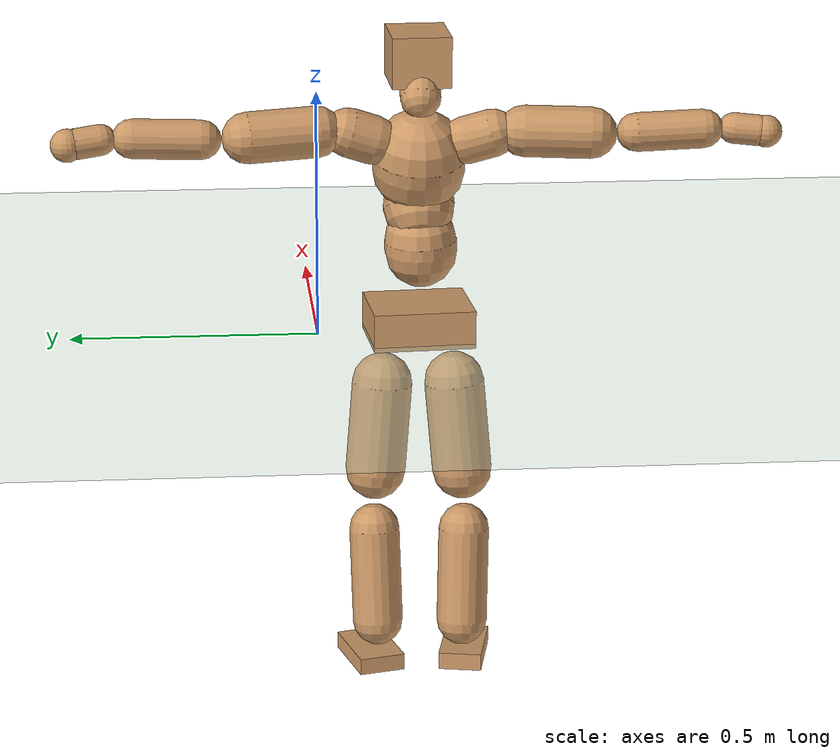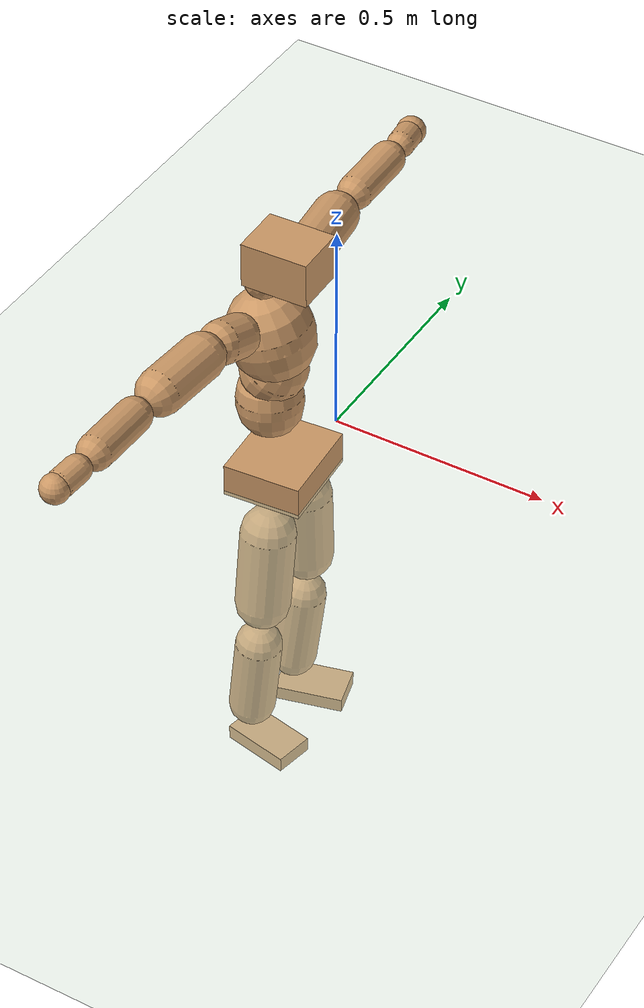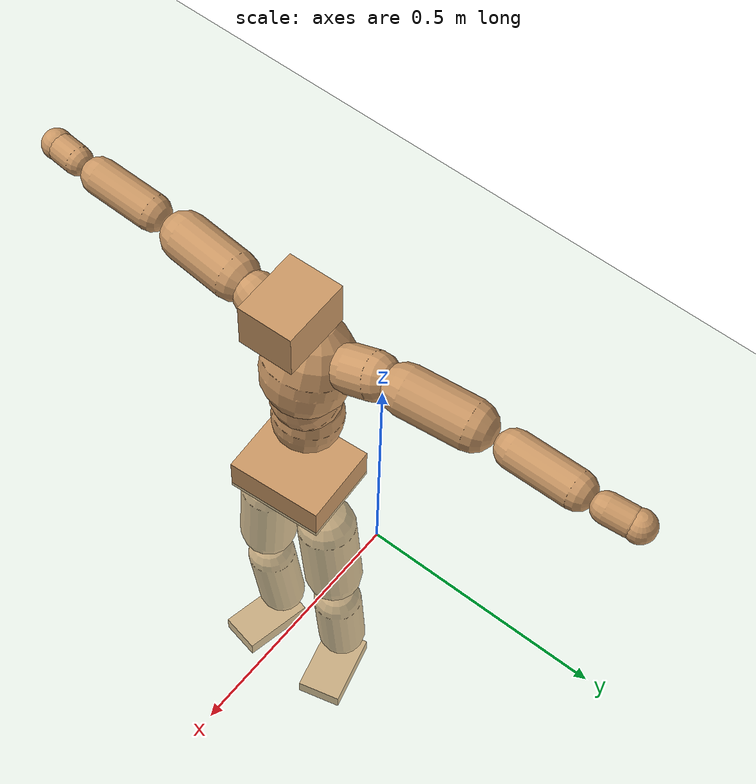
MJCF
<mujoco model="humanoid">
  <compiler coordinate="local" angle="radian"/>
  <default>
    <joint damping="0.0" armature="0.01" stiffness="0.0" limited="true"/>
    <geom conaffinity="1" condim="3" contype="7" margin="0.001" rgba="0.8 0.6 .4 1"/>
  </default>
  <asset>
    <texture type="skybox" builtin="gradient" rgb1=".4 .5 .6" rgb2="0 0 0" width="100" height="100"/>
    <texture builtin="flat" height="1278" mark="cross" markrgb="1 1 1" name="texgeom" random="0.01" rgb1="0.8 0.6 0.4" rgb2="0.8 0.6 0.4" type="cube" width="127"/>
    <texture builtin="checker" height="100" name="texplane" rgb1="0 0 0" rgb2="0.8 0.8 0.8" type="2d" width="100"/>
    <material name="MatPlane" reflectance="0.5" shininess="1" specular="1" texrepeat="60 60" texture="texplane"/>
    <material name="geom" texture="texgeom" texuniform="true"/>
  </asset>
  <worldbody>
    <light cutoff="100" diffuse="1 1 1" dir="-0 0 -1.3" directional="true" exponent="1" pos="0 0 1.3" specular=".1 .1 .1"/>
    <geom conaffinity="1" condim="3" name="floor" pos="0 0 0" rgba="0.8 0.9 0.8 1" size="100 100 .2" type="plane" material="MatPlane"/>
    <body name="Pelvis" pos="-0.0029 -0.2038 0.0381">
      <freejoint name="Pelvis"/>
      <geom type="box" contype="1" conaffinity="1" density="500" pos="-0.0043 -0.0003 -0.0111" size="0.0874 0.1028 0.0384" quat="0.9994 0.0000 0.0000 0.0344" name="Pelvis"/>
      <body name="L_Hip" pos="0.0024 0.0692 -0.0815">
        <joint name="L_Hip_x" type="hinge" pos="0 0 0" axis="1 0 0" stiffness="800" damping="80" armature="0.02" range="-180.0000 180.0000"/>
        <joint name="L_Hip_y" type="hinge" pos="0 0 0" axis="0 1 0" stiffness="800" damping="80" armature="0.02" range="-180.0000 180.0000"/>
        <joint name="L_Hip_z" type="hinge" pos="0 0 0" axis="0 0 1" stiffness="800" damping="80" armature="0.02" range="-180.0000 180.0000"/>
        <geom type="capsule" contype="1" conaffinity="1" density="500" fromto="-0.0015 0.0048 -0.0620 -0.0060 0.0193 -0.2479" size="0.0612" name="L_Hip"/>
        <body name="L_Knee" pos="-0.0076 0.0242 -0.3098">
          <joint name="L_Knee_x" type="hinge" pos="0 0 0" axis="1 0 0" stiffness="800" damping="80" armature="0.02" range="-180.0000 180.0000"/>
          <joint name="L_Knee_y" type="hinge" pos="0 0 0" axis="0 1 0" stiffness="800" damping="80" armature="0.02" range="-180.0000 180.0000"/>
          <joint name="L_Knee_z" type="hinge" pos="0 0 0" axis="0 0 1" stiffness="800" damping="80" armature="0.02" range="-180.0000 180.0000"/>
          <geom type="capsule" contype="1" conaffinity="1" density="500" fromto="-0.0076 -0.0017 -0.0645 -0.0303 -0.0069 -0.2579" size="0.0515" name="L_Knee"/>
          <body name="L_Ankle" pos="-0.0379 -0.0086 -0.3224">
            <joint name="L_Ankle_x" type="hinge" pos="0 0 0" axis="1 0 0" stiffness="800" damping="80" armature="0.02" range="-180.0000 180.0000"/>
            <joint name="L_Ankle_y" type="hinge" pos="0 0 0" axis="0 1 0" stiffness="800" damping="80" armature="0.02" range="-180.0000 180.0000"/>
            <joint name="L_Ankle_z" type="hinge" pos="0 0 0" axis="0 0 1" stiffness="800" damping="80" armature="0.02" range="-180.0000 180.0000"/>
            <geom type="box" contype="1" conaffinity="1" density="500" pos="0.0527 0.0135 -0.0243" size="0.0787 0.0475 0.0169" quat="0.9921 0.0000 0.0000 0.1251" name="L_Ankle"/>
            <body name="L_Toe" pos="0.1053 0.027 -0.0487">
              <joint name="L_Toe_x" type="hinge" pos="0 0 0" axis="1 0 0" stiffness="500" damping="50" armature="0.02" range="-180.0000 180.0000"/>
              <joint name="L_Toe_y" type="hinge" pos="0 0 0" axis="0 1 0" stiffness="500" damping="50" armature="0.02" range="-180.0000 180.0000"/>
              <joint name="L_Toe_z" type="hinge" pos="0 0 0" axis="0 0 1" stiffness="500" damping="50" armature="0.02" range="-180.0000 180.0000"/>
              <geom type="box" contype="1" conaffinity="1" density="500" pos="0.0000 0.0000 0.0255" size="0.0009 0.0023 0.0009" quat="0.9913 0.0000 0.0000 0.1315" name="L_Toe"/>
            </body>
          </body>
        </body>
      </body>
      <body name="R_Hip" pos="0.0032 -0.0678 -0.0811">
        <joint name="R_Hip_x" type="hinge" pos="0 0 0" axis="1 0 0" stiffness="800" damping="80" armature="0.02" range="-180.0000 180.0000"/>
        <joint name="R_Hip_y" type="hinge" pos="0 0 0" axis="0 1 0" stiffness="800" damping="80" armature="0.02" range="-180.0000 180.0000"/>
        <joint name="R_Hip_z" type="hinge" pos="0 0 0" axis="0 0 1" stiffness="800" damping="80" armature="0.02" range="-180.0000 180.0000"/>
        <geom type="capsule" contype="1" conaffinity="1" density="500" fromto="-0.0019 -0.0055 -0.0630 -0.0076 -0.0220 -0.2519" size="0.0608" name="R_Hip"/>
        <body name="R_Knee" pos="-0.0095 -0.0275 -0.3148">
          <joint name="R_Knee_x" type="hinge" pos="0 0 0" axis="1 0 0" stiffness="800" damping="80" armature="0.02" range="-180.0000 180.0000"/>
          <joint name="R_Knee_y" type="hinge" pos="0 0 0" axis="0 1 0" stiffness="800" damping="80" armature="0.02" range="-180.0000 180.0000"/>
          <joint name="R_Knee_z" type="hinge" pos="0 0 0" axis="0 0 1" stiffness="800" damping="80" armature="0.02" range="-180.0000 180.0000"/>
          <geom type="capsule" contype="1" conaffinity="1" density="500" fromto="-0.0077 0.0018 -0.0644 -0.0307 0.0072 -0.2578" size="0.0516" name="R_Knee"/>
          <body name="R_Ankle" pos="-0.0384 0.009 -0.3222">
            <joint name="R_Ankle_x" type="hinge" pos="0 0 0" axis="1 0 0" stiffness="800" damping="80" armature="0.02" range="-180.0000 180.0000"/>
            <joint name="R_Ankle_y" type="hinge" pos="0 0 0" axis="0 1 0" stiffness="800" damping="80" armature="0.02" range="-180.0000 180.0000"/>
            <joint name="R_Ankle_z" type="hinge" pos="0 0 0" axis="0 0 1" stiffness="800" damping="80" armature="0.02" range="-180.0000 180.0000"/>
            <geom type="box" contype="1" conaffinity="1" density="500" pos="0.0541 -0.0109 -0.0195" size="0.0775 0.0441 0.0176" quat="0.9950 0.0000 0.0000 -0.0995" name="R_Ankle"/>
            <body name="R_Toe" pos="0.1082 -0.0219 -0.0391">
              <joint name="R_Toe_x" type="hinge" pos="0 0 0" axis="1 0 0" stiffness="500" damping="50" armature="0.02" range="-180.0000 180.0000"/>
              <joint name="R_Toe_y" type="hinge" pos="0 0 0" axis="0 1 0" stiffness="500" damping="50" armature="0.02" range="-180.0000 180.0000"/>
              <joint name="R_Toe_z" type="hinge" pos="0 0 0" axis="0 0 1" stiffness="500" damping="50" armature="0.02" range="-180.0000 180.0000"/>
              <geom type="box" contype="1" conaffinity="1" density="500" pos="0.0000 0.0000 0.0217" size="0.0008 0.0022 0.001" quat="0.9960 0.0000 0.0000 -0.0891" name="R_Toe"/>
            </body>
          </body>
        </body>
      </body>
      <body name="Torso" pos="-0.0312 -0.0031 0.0959">
        <joint name="Torso_x" type="hinge" pos="0 0 0" axis="1 0 0" stiffness="1000" damping="100" armature="0.02" range="-180.0000 180.0000"/>
        <joint name="Torso_y" type="hinge" pos="0 0 0" axis="0 1 0" stiffness="1000" damping="100" armature="0.02" range="-180.0000 180.0000"/>
        <joint name="Torso_z" type="hinge" pos="0 0 0" axis="0 0 1" stiffness="1000" damping="100" armature="0.02" range="-180.0000 180.0000"/>
        <geom type="capsule" contype="1" conaffinity="1" density="500" fromto="-0.0051 0.0026 0.0707 -0.0034 0.0017 0.0471" size="0.0723" name="Torso"/>
        <body name="Spine" pos="-0.0085 0.0043 0.1178">
          <joint name="Spine_x" type="hinge" pos="0 0 0" axis="1 0 0" stiffness="1000" damping="100" armature="0.02" range="-180.0000 180.0000"/>
          <joint name="Spine_y" type="hinge" pos="0 0 0" axis="0 1 0" stiffness="1000" damping="100" armature="0.02" range="-180.0000 180.0000"/>
          <joint name="Spine_z" type="hinge" pos="0 0 0" axis="0 0 1" stiffness="1000" damping="100" armature="0.02" range="-180.0000 180.0000"/>
          <geom type="capsule" contype="1" conaffinity="1" density="500" fromto="0.0159 0.0015 0.0274 0.0106 0.0010 0.0183" size="0.0715" name="Spine"/>
          <body name="Chest" pos="0.0265 0.0026 0.0457">
            <joint name="Chest_x" type="hinge" pos="0 0 0" axis="1 0 0" stiffness="1000" damping="100" armature="0.02" range="-180.0000 180.0000"/>
            <joint name="Chest_y" type="hinge" pos="0 0 0" axis="0 1 0" stiffness="1000" damping="100" armature="0.02" range="-180.0000 180.0000"/>
            <joint name="Chest_z" type="hinge" pos="0 0 0" axis="0 0 1" stiffness="1000" damping="100" armature="0.02" range="-180.0000 180.0000"/>
            <geom type="capsule" contype="1" conaffinity="1" density="500" fromto="-0.0239 -0.0008 0.0813 -0.0159 -0.0005 0.0542" size="0.0925" name="Chest"/>
            <body name="Neck" pos="-0.045 -0.0026 0.1882">
              <joint name="Neck_x" type="hinge" pos="0 0 0" axis="1 0 0" stiffness="500" damping="50" armature="0.02" range="-180.0000 180.0000"/>
              <joint name="Neck_y" type="hinge" pos="0 0 0" axis="0 1 0" stiffness="500" damping="50" armature="0.02" range="-180.0000 180.0000"/>
              <joint name="Neck_z" type="hinge" pos="0 0 0" axis="0 0 1" stiffness="500" damping="50" armature="0.02" range="-180.0000 180.0000"/>
              <geom type="capsule" contype="1" conaffinity="1" density="500" fromto="0.0089 -0.0002 0.0109 0.0357 -0.0006 0.0435" size="0.0406" name="Neck"/>
              <body name="Head" pos="0.0447 -0.0008 0.0543">
                <joint name="Head_x" type="hinge" pos="0 0 0" axis="1 0 0" stiffness="500" damping="50" armature="0.02" range="-180.0000 180.0000"/>
                <joint name="Head_y" type="hinge" pos="0 0 0" axis="0 1 0" stiffness="500" damping="50" armature="0.02" range="-180.0000 180.0000"/>
                <joint name="Head_z" type="hinge" pos="0 0 0" axis="0 0 1" stiffness="500" damping="50" armature="0.02" range="-180.0000 180.0000"/>
                <geom type="box" contype="1" conaffinity="1" density="500" pos="0.0233 0.0006 0.0282" size="0.0748 0.059 0.051" quat="0.9999 0.0000 0.0000 0.0131" name="Head"/>
              </body>
            </body>
            <body name="L_Thorax" pos="-0.0351 0.0725 0.1101">
              <joint name="L_Thorax_x" type="hinge" pos="0 0 0" axis="1 0 0" stiffness="500" damping="50" armature="0.02" range="-180.0000 180.0000"/>
              <joint name="L_Thorax_y" type="hinge" pos="0 0 0" axis="0 1 0" stiffness="500" damping="50" armature="0.02" range="-180.0000 180.0000"/>
              <joint name="L_Thorax_z" type="hinge" pos="0 0 0" axis="0 0 1" stiffness="500" damping="50" armature="0.02" range="-180.0000 180.0000"/>
              <geom type="capsule" contype="1" conaffinity="1" density="500" fromto="-0.0018 0.0171 0.0060 -0.0073 0.0684 0.0239" size="0.0488" name="L_Thorax"/>
              <body name="L_Shoulder" pos="-0.0091 0.0855 0.0299">
                <joint name="L_Shoulder_x" type="hinge" pos="0 0 0" axis="1 0 0" stiffness="500" damping="50" armature="0.02" range="-720.0000 720.0000"/>
                <joint name="L_Shoulder_y" type="hinge" pos="0 0 0" axis="0 1 0" stiffness="500" damping="50" armature="0.02" range="-720.0000 720.0000"/>
                <joint name="L_Shoulder_z" type="hinge" pos="0 0 0" axis="0 0 1" stiffness="500" damping="50" armature="0.02" range="-720.0000 720.0000"/>
                <geom type="capsule" contype="1" conaffinity="1" density="500" fromto="-0.0061 0.0453 -0.0018 -0.0242 0.1812 -0.0073" size="0.0511" name="L_Shoulder"/>
                <body name="L_Elbow" pos="-0.0303 0.2264 -0.0092">
                  <joint name="L_Elbow_x" type="hinge" pos="0 0 0" axis="1 0 0" stiffness="500" damping="50" armature="0.02" range="-720.0000 720.0000"/>
                  <joint name="L_Elbow_y" type="hinge" pos="0 0 0" axis="0 1 0" stiffness="500" damping="50" armature="0.02" range="-720.0000 720.0000"/>
                  <joint name="L_Elbow_z" type="hinge" pos="0 0 0" axis="0 0 1" stiffness="500" damping="50" armature="0.02" range="-720.0000 720.0000"/>
                  <geom type="capsule" contype="1" conaffinity="1" density="500" fromto="0.0003 0.0449 0.0014 0.0012 0.1795 0.0057" size="0.0394" name="L_Elbow"/>
                  <body name="L_Wrist" pos="0.0016 0.2244 0.0072">
                    <joint name="L_Wrist_x" type="hinge" pos="0 0 0" axis="1 0 0" stiffness="300" damping="30" armature="0.02" range="-180.0000 180.0000"/>
                    <joint name="L_Wrist_y" type="hinge" pos="0 0 0" axis="0 1 0" stiffness="300" damping="30" armature="0.02" range="-180.0000 180.0000"/>
                    <joint name="L_Wrist_z" type="hinge" pos="0 0 0" axis="0 0 1" stiffness="300" damping="30" armature="0.02" range="-180.0000 180.0000"/>
                    <geom type="capsule" contype="1" conaffinity="1" density="500" fromto="-0.0027 0.0162 -0.0020 -0.0107 0.0649 -0.0079" size="0.0307" name="L_Wrist"/>
                    <body name="L_Hand" pos="-0.0133 0.0811 -0.0098">
                      <joint name="L_Hand_x" type="hinge" pos="0 0 0" axis="1 0 0" stiffness="300" damping="30" armature="0.02" range="-180.0000 180.0000"/>
                      <joint name="L_Hand_y" type="hinge" pos="0 0 0" axis="0 1 0" stiffness="300" damping="30" armature="0.02" range="-180.0000 180.0000"/>
                      <joint name="L_Hand_z" type="hinge" pos="0 0 0" axis="0 0 1" stiffness="300" damping="30" armature="0.02" range="-180.0000 180.0000"/>
                      <geom type="sphere" contype="1" conaffinity="1" density="500" size="0.0329" pos="0.0000 0.0000 0.0000" name="L_Hand"/>
                    </body>
                  </body>
                </body>
              </body>
            </body>
            <body name="R_Thorax" pos="-0.0393 -0.0739 0.1082">
              <joint name="R_Thorax_x" type="hinge" pos="0 0 0" axis="1 0 0" stiffness="500" damping="50" armature="0.02" range="-180.0000 180.0000"/>
              <joint name="R_Thorax_y" type="hinge" pos="0 0 0" axis="0 1 0" stiffness="500" damping="50" armature="0.02" range="-180.0000 180.0000"/>
              <joint name="R_Thorax_z" type="hinge" pos="0 0 0" axis="0 0 1" stiffness="500" damping="50" armature="0.02" range="-180.0000 180.0000"/>
              <geom type="capsule" contype="1" conaffinity="1" density="500" fromto="-0.0024 -0.0177 0.0053 -0.0095 -0.0709 0.0211" size="0.0475" name="R_Thorax"/>
              <body name="R_Shoulder" pos="-0.0119 -0.0886 0.0264">
                <joint name="R_Shoulder_x" type="hinge" pos="0 0 0" axis="1 0 0" stiffness="500" damping="50" armature="0.02" range="-720.0000 720.0000"/>
                <joint name="R_Shoulder_y" type="hinge" pos="0 0 0" axis="0 1 0" stiffness="500" damping="50" armature="0.02" range="-720.0000 720.0000"/>
                <joint name="R_Shoulder_z" type="hinge" pos="0 0 0" axis="0 0 1" stiffness="500" damping="50" armature="0.02" range="-720.0000 720.0000"/>
                <geom type="capsule" contype="1" conaffinity="1" density="500" fromto="-0.0043 -0.0438 -0.0010 -0.0174 -0.1754 -0.0041" size="0.0512" name="R_Shoulder"/>
                <body name="R_Elbow" pos="-0.0217 -0.2192 -0.0051">
                  <joint name="R_Elbow_x" type="hinge" pos="0 0 0" axis="1 0 0" stiffness="500" damping="50" armature="0.02" range="-720.0000 720.0000"/>
                  <joint name="R_Elbow_y" type="hinge" pos="0 0 0" axis="0 1 0" stiffness="500" damping="50" armature="0.02" range="-720.0000 720.0000"/>
                  <joint name="R_Elbow_z" type="hinge" pos="0 0 0" axis="0 0 1" stiffness="500" damping="50" armature="0.02" range="-720.0000 720.0000"/>
                  <geom type="capsule" contype="1" conaffinity="1" density="500" fromto="0.0001 -0.0446 0.0016 0.0002 -0.1782 0.0066" size="0.0387" name="R_Elbow"/>
                  <body name="R_Wrist" pos="0.0003 -0.2228 0.0082">
                    <joint name="R_Wrist_x" type="hinge" pos="0 0 0" axis="1 0 0" stiffness="300" damping="30" armature="0.02" range="-180.0000 180.0000"/>
                    <joint name="R_Wrist_y" type="hinge" pos="0 0 0" axis="0 1 0" stiffness="300" damping="30" armature="0.02" range="-180.0000 180.0000"/>
                    <joint name="R_Wrist_z" type="hinge" pos="0 0 0" axis="0 0 1" stiffness="300" damping="30" armature="0.02" range="-180.0000 180.0000"/>
                    <geom type="capsule" contype="1" conaffinity="1" density="500" fromto="-0.0020 -0.0157 -0.0014 -0.0082 -0.0630 -0.0056" size="0.0306" name="R_Wrist"/>
                    <body name="R_Hand" pos="-0.0102 -0.0787 -0.0071">
                      <joint name="R_Hand_x" type="hinge" pos="0 0 0" axis="1 0 0" stiffness="300" damping="30" armature="0.02" range="-180.0000 180.0000"/>
                      <joint name="R_Hand_y" type="hinge" pos="0 0 0" axis="0 1 0" stiffness="300" damping="30" armature="0.02" range="-180.0000 180.0000"/>
                      <joint name="R_Hand_z" type="hinge" pos="0 0 0" axis="0 0 1" stiffness="300" damping="30" armature="0.02" range="-180.0000 180.0000"/>
                      <geom type="sphere" contype="1" conaffinity="1" density="500" size="0.0319" pos="0.0000 0.0000 0.0000" name="R_Hand"/>
                    </body>
                  </body>
                </body>
              </body>
            </body>
          </body>
        </body>
      </body>
    </body>
  </worldbody>
  <actuator>
    <motor name="L_Hip_x" joint="L_Hip_x" gear="500"/>
    <motor name="L_Hip_y" joint="L_Hip_y" gear="500"/>
    <motor name="L_Hip_z" joint="L_Hip_z" gear="500"/>
    <motor name="L_Knee_x" joint="L_Knee_x" gear="500"/>
    <motor name="L_Knee_y" joint="L_Knee_y" gear="500"/>
    <motor name="L_Knee_z" joint="L_Knee_z" gear="500"/>
    <motor name="L_Ankle_x" joint="L_Ankle_x" gear="500"/>
    <motor name="L_Ankle_y" joint="L_Ankle_y" gear="500"/>
    <motor name="L_Ankle_z" joint="L_Ankle_z" gear="500"/>
    <motor name="L_Toe_x" joint="L_Toe_x" gear="500"/>
    <motor name="L_Toe_y" joint="L_Toe_y" gear="500"/>
    <motor name="L_Toe_z" joint="L_Toe_z" gear="500"/>
    <motor name="R_Hip_x" joint="R_Hip_x" gear="500"/>
    <motor name="R_Hip_y" joint="R_Hip_y" gear="500"/>
    <motor name="R_Hip_z" joint="R_Hip_z" gear="500"/>
    <motor name="R_Knee_x" joint="R_Knee_x" gear="500"/>
    <motor name="R_Knee_y" joint="R_Knee_y" gear="500"/>
    <motor name="R_Knee_z" joint="R_Knee_z" gear="500"/>
    <motor name="R_Ankle_x" joint="R_Ankle_x" gear="500"/>
    <motor name="R_Ankle_y" joint="R_Ankle_y" gear="500"/>
    <motor name="R_Ankle_z" joint="R_Ankle_z" gear="500"/>
    <motor name="R_Toe_x" joint="R_Toe_x" gear="500"/>
    <motor name="R_Toe_y" joint="R_Toe_y" gear="500"/>
    <motor name="R_Toe_z" joint="R_Toe_z" gear="500"/>
    <motor name="Torso_x" joint="Torso_x" gear="500"/>
    <motor name="Torso_y" joint="Torso_y" gear="500"/>
    <motor name="Torso_z" joint="Torso_z" gear="500"/>
    <motor name="Spine_x" joint="Spine_x" gear="500"/>
    <motor name="Spine_y" joint="Spine_y" gear="500"/>
    <motor name="Spine_z" joint="Spine_z" gear="500"/>
    <motor name="Chest_x" joint="Chest_x" gear="500"/>
    <motor name="Chest_y" joint="Chest_y" gear="500"/>
    <motor name="Chest_z" joint="Chest_z" gear="500"/>
    <motor name="Neck_x" joint="Neck_x" gear="500"/>
    <motor name="Neck_y" joint="Neck_y" gear="500"/>
    <motor name="Neck_z" joint="Neck_z" gear="500"/>
    <motor name="Head_x" joint="Head_x" gear="500"/>
    <motor name="Head_y" joint="Head_y" gear="500"/>
    <motor name="Head_z" joint="Head_z" gear="500"/>
    <motor name="L_Thorax_x" joint="L_Thorax_x" gear="500"/>
    <motor name="L_Thorax_y" joint="L_Thorax_y" gear="500"/>
    <motor name="L_Thorax_z" joint="L_Thorax_z" gear="500"/>
    <motor name="L_Shoulder_x" joint="L_Shoulder_x" gear="500"/>
    <motor name="L_Shoulder_y" joint="L_Shoulder_y" gear="500"/>
    <motor name="L_Shoulder_z" joint="L_Shoulder_z" gear="500"/>
    <motor name="L_Elbow_x" joint="L_Elbow_x" gear="500"/>
    <motor name="L_Elbow_y" joint="L_Elbow_y" gear="500"/>
    <motor name="L_Elbow_z" joint="L_Elbow_z" gear="500"/>
    <motor name="L_Wrist_x" joint="L_Wrist_x" gear="500"/>
    <motor name="L_Wrist_y" joint="L_Wrist_y" gear="500"/>
    <motor name="L_Wrist_z" joint="L_Wrist_z" gear="500"/>
    <motor name="L_Hand_x" joint="L_Hand_x" gear="500"/>
    <motor name="L_Hand_y" joint="L_Hand_y" gear="500"/>
    <motor name="L_Hand_z" joint="L_Hand_z" gear="500"/>
    <motor name="R_Thorax_x" joint="R_Thorax_x" gear="500"/>
    <motor name="R_Thorax_y" joint="R_Thorax_y" gear="500"/>
    <motor name="R_Thorax_z" joint="R_Thorax_z" gear="500"/>
    <motor name="R_Shoulder_x" joint="R_Shoulder_x" gear="500"/>
    <motor name="R_Shoulder_y" joint="R_Shoulder_y" gear="500"/>
    <motor name="R_Shoulder_z" joint="R_Shoulder_z" gear="500"/>
    <motor name="R_Elbow_x" joint="R_Elbow_x" gear="500"/>
    <motor name="R_Elbow_y" joint="R_Elbow_y" gear="500"/>
    <motor name="R_Elbow_z" joint="R_Elbow_z" gear="500"/>
    <motor name="R_Wrist_x" joint="R_Wrist_x" gear="500"/>
    <motor name="R_Wrist_y" joint="R_Wrist_y" gear="500"/>
    <motor name="R_Wrist_z" joint="R_Wrist_z" gear="500"/>
    <motor name="R_Hand_x" joint="R_Hand_x" gear="500"/>
    <motor name="R_Hand_y" joint="R_Hand_y" gear="500"/>
    <motor name="R_Hand_z" joint="R_Hand_z" gear="500"/>
  </actuator>
  <contact>
    <exclude body1="Torso" body2="Chest"/>
    <exclude body1="Head" body2="Chest"/>
    <exclude body1="R_Knee" body2="R_Toe"/>
    <exclude body1="R_Knee" body2="L_Ankle"/>
    <exclude body1="R_Knee" body2="L_Toe"/>
    <exclude body1="L_Knee" body2="L_Toe"/>
    <exclude body1="L_Knee" body2="R_Ankle"/>
    <exclude body1="L_Knee" body2="R_Toe"/>
    <exclude body1="L_Shoulder" body2="Chest"/>
    <exclude body1="R_Shoulder" body2="Chest"/>
  </contact>
  <sensor/>
  <size njmax="700" nconmax="700"/>
</mujoco>
